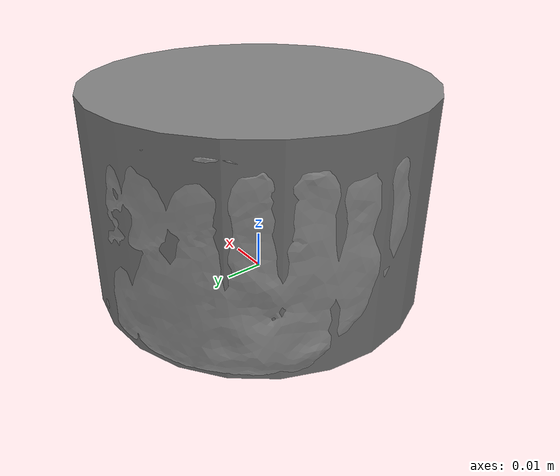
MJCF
<mujoco model="tape">
  <asset>
    <material name="tape_mat" rgba="0.6 0.6 0.6 1" specular="0.3" shininess="0.1"/>
    <mesh name="tape_vis" file="tape_libero.obj" scale="1 1 1"/>
  </asset>
  <worldbody>
    <body>
      <body name="object">
        <geom type="mesh" mesh="tape_vis" material="tape_mat" group="1" contype="0" conaffinity="0"/>
        <geom name="tape_collision" type="cylinder" size="0.04212 0.02637" pos="0 0 0.02637" group="0" density="100" friction="0.95 0.3 0.1" solimp="0.998 0.998 0.001" solref="0.001 1"/>
      </body>
      <site rgba="0 0 0 0" size="0.005" pos="0 0 0" name="bottom_site"/>
      <site rgba="0 0 0 0" size="0.005" pos="0 0 0.05275" name="top_site"/>
      <site rgba="0 0 0 0" size="0.005" pos="0.04212 0 0" name="horizontal_radius_site"/>
    </body>
  </worldbody>
</mujoco>
